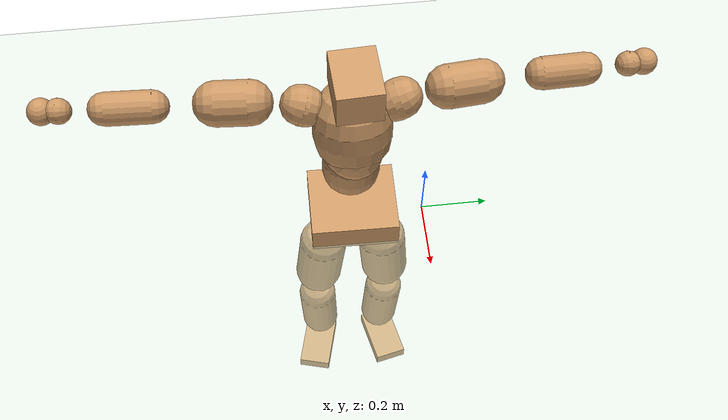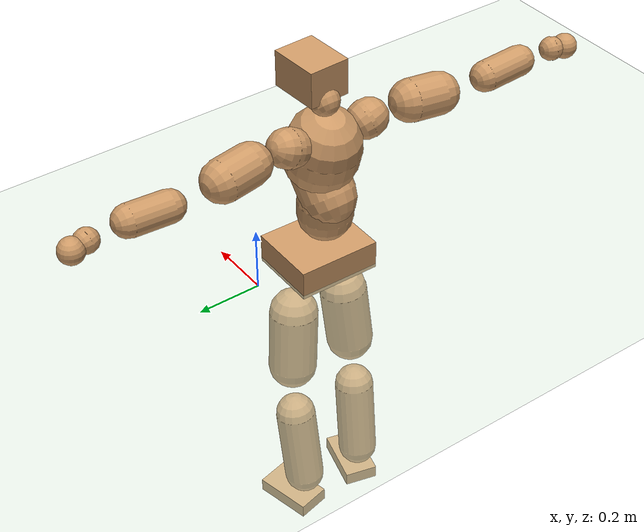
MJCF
<mujoco model="humanoid">
  <compiler coordinate="local" angle="radian"/>
  <default>
    <joint damping="0.0" armature="0.01" stiffness="0.0" limited="true"/>
    <geom conaffinity="1" condim="3" contype="7" margin="0.001" rgba="0.8 0.6 .4 1"/>
  </default>
  <asset>
    <texture type="skybox" builtin="gradient" rgb1=".4 .5 .6" rgb2="0 0 0" width="100" height="100"/>
    <texture builtin="flat" height="1278" mark="cross" markrgb="1 1 1" name="texgeom" random="0.01" rgb1="0.8 0.6 0.4" rgb2="0.8 0.6 0.4" type="cube" width="127"/>
    <texture builtin="checker" height="100" name="texplane" rgb1="0 0 0" rgb2="0.8 0.8 0.8" type="2d" width="100"/>
    <material name="MatPlane" reflectance="0.5" shininess="1" specular="1" texrepeat="60 60" texture="texplane"/>
    <material name="geom" texture="texgeom" texuniform="true"/>
  </asset>
  <worldbody>
    <light cutoff="100" diffuse="1 1 1" dir="-0 0 -1.3" directional="true" exponent="1" pos="0 0 1.3" specular=".1 .1 .1"/>
    <geom conaffinity="1" condim="3" name="floor" pos="0 0 0" rgba="0.8 0.9 0.8 1" size="100 100 .2" type="plane" material="MatPlane"/>
    <body name="Pelvis" pos="0.0017 -0.2139 0.0462">
      <freejoint name="Pelvis"/>
      <geom type="box" contype="1" conaffinity="1" density="5359.373988" pos="-0.0058 0.0001 -0.0140" size="0.1119 0.1302 0.0464" quat="1.0000 0.0000 0.0000 -0.0068" name="Pelvis"/>
      <body name="L_Hip" pos="-0.0004 0.0863 -0.1001">
        <joint name="L_Hip_x" type="hinge" pos="0 0 0" axis="1 0 0" stiffness="1600" damping="160" armature="0.02" range="-180.0000 180.0000"/>
        <joint name="L_Hip_y" type="hinge" pos="0 0 0" axis="0 1 0" stiffness="1600" damping="160" armature="0.02" range="-180.0000 180.0000"/>
        <joint name="L_Hip_z" type="hinge" pos="0 0 0" axis="0 0 1" stiffness="1600" damping="160" armature="0.02" range="-180.0000 180.0000"/>
        <geom type="capsule" contype="1" conaffinity="1" density="2040.816327" size="0.0752" fromto="-0.0047 0.0079 -0.1048 -0.0136 0.0230 -0.3060" name="L_Hip"/>
        <body name="L_Knee" pos="-0.0182 0.0309 -0.4109">
          <joint name="L_Knee_x" type="hinge" pos="0 0 0" axis="1 0 0" stiffness="1600" damping="160" armature="0.02" range="-180.0000 180.0000"/>
          <joint name="L_Knee_y" type="hinge" pos="0 0 0" axis="0 1 0" stiffness="1600" damping="160" armature="0.02" range="-180.0000 180.0000"/>
          <joint name="L_Knee_z" type="hinge" pos="0 0 0" axis="0 0 1" stiffness="1600" damping="160" armature="0.02" range="-180.0000 180.0000"/>
          <geom type="capsule" contype="1" conaffinity="1" density="1234.567901" size="0.0628" fromto="-0.0115 -0.0024 -0.0921 -0.0434 -0.0092 -0.3489" name="L_Knee"/>
          <body name="L_Ankle" pos="-0.0549 -0.0116 -0.441">
            <joint name="L_Ankle_x" type="hinge" pos="0 0 0" axis="1 0 0" stiffness="1600" damping="160" armature="0.02" range="-180.0000 180.0000"/>
            <joint name="L_Ankle_y" type="hinge" pos="0 0 0" axis="0 1 0" stiffness="1600" damping="160" armature="0.02" range="-180.0000 180.0000"/>
            <joint name="L_Ankle_z" type="hinge" pos="0 0 0" axis="0 0 1" stiffness="1600" damping="160" armature="0.02" range="-180.0000 180.0000"/>
            <geom type="box" contype="1" conaffinity="1" density="999.999993" pos="0.0636 0.0144 -0.0314" size="0.0934 0.053 0.023" quat="0.9938 0.0000 0.0000 0.1114" name="L_Ankle"/>
            <body name="L_Toe" pos="0.1272 0.0289 -0.0627">
              <joint name="L_Toe_x" type="hinge" pos="0 0 0" axis="1 0 0" stiffness="1000" damping="100" armature="0.02" range="-180.0000 180.0000"/>
              <joint name="L_Toe_y" type="hinge" pos="0 0 0" axis="0 1 0" stiffness="1000" damping="100" armature="0.02" range="-180.0000 180.0000"/>
              <joint name="L_Toe_z" type="hinge" pos="0 0 0" axis="0 0 1" stiffness="1000" damping="100" armature="0.02" range="-180.0000 180.0000"/>
              <geom type="box" contype="1" conaffinity="1" density="8701451.227911" pos="0.0000 0.0000 0.0318" size="0.001 0.0026 0.0012" quat="0.9931 0.0000 0.0000 0.1170" name="L_Toe"/>
            </body>
          </body>
        </body>
      </body>
      <body name="R_Hip" pos="0.0026 -0.0832 -0.1002">
        <joint name="R_Hip_x" type="hinge" pos="0 0 0" axis="1 0 0" stiffness="1600" damping="160" armature="0.02" range="-180.0000 180.0000"/>
        <joint name="R_Hip_y" type="hinge" pos="0 0 0" axis="0 1 0" stiffness="1600" damping="160" armature="0.02" range="-180.0000 180.0000"/>
        <joint name="R_Hip_z" type="hinge" pos="0 0 0" axis="0 0 1" stiffness="1600" damping="160" armature="0.02" range="-180.0000 180.0000"/>
        <geom type="capsule" contype="1" conaffinity="1" density="2040.816327" size="0.0744" fromto="-0.0051 -0.0096 -0.1038 -0.0153 -0.0286 -0.3103" name="R_Hip"/>
        <body name="R_Knee" pos="-0.0204 -0.0382 -0.4141">
          <joint name="R_Knee_x" type="hinge" pos="0 0 0" axis="1 0 0" stiffness="1600" damping="160" armature="0.02" range="-180.0000 180.0000"/>
          <joint name="R_Knee_y" type="hinge" pos="0 0 0" axis="0 1 0" stiffness="1600" damping="160" armature="0.02" range="-180.0000 180.0000"/>
          <joint name="R_Knee_z" type="hinge" pos="0 0 0" axis="0 0 1" stiffness="1600" damping="160" armature="0.02" range="-180.0000 180.0000"/>
          <geom type="capsule" contype="1" conaffinity="1" density="1234.567901" size="0.0626" fromto="-0.0114 0.0028 -0.0919 -0.0433 0.0107 -0.3499" name="R_Knee"/>
          <body name="R_Ankle" pos="-0.0546 0.0135 -0.4418">
            <joint name="R_Ankle_x" type="hinge" pos="0 0 0" axis="1 0 0" stiffness="1600" damping="160" armature="0.02" range="-180.0000 180.0000"/>
            <joint name="R_Ankle_y" type="hinge" pos="0 0 0" axis="0 1 0" stiffness="1600" damping="160" armature="0.02" range="-180.0000 180.0000"/>
            <joint name="R_Ankle_z" type="hinge" pos="0 0 0" axis="0 0 1" stiffness="1600" damping="160" armature="0.02" range="-180.0000 180.0000"/>
            <geom type="box" contype="1" conaffinity="1" density="999.999929" pos="0.0659 -0.0171 -0.0266" size="0.0938 0.0535 0.0227" quat="0.9920 0.0000 0.0000 -0.1264" name="R_Ankle"/>
            <body name="R_Toe" pos="0.1317 -0.0341 -0.0532">
              <joint name="R_Toe_x" type="hinge" pos="0 0 0" axis="1 0 0" stiffness="1000" damping="100" armature="0.02" range="-180.0000 180.0000"/>
              <joint name="R_Toe_y" type="hinge" pos="0 0 0" axis="0 1 0" stiffness="1000" damping="100" armature="0.02" range="-180.0000 180.0000"/>
              <joint name="R_Toe_z" type="hinge" pos="0 0 0" axis="0 0 1" stiffness="1000" damping="100" armature="0.02" range="-180.0000 180.0000"/>
              <geom type="box" contype="1" conaffinity="1" density="8127382.440924" pos="0.0000 0.0000 0.0293" size="0.001 0.0026 0.0013" quat="0.9931 0.0000 0.0000 -0.1177" name="R_Toe"/>
            </body>
          </body>
        </body>
      </body>
      <body name="Torso" pos="-0.0371 -0.0026 0.1164">
        <joint name="Torso_x" type="hinge" pos="0 0 0" axis="1 0 0" stiffness="2000" damping="200" armature="0.02" range="-180.0000 180.0000"/>
        <joint name="Torso_y" type="hinge" pos="0 0 0" axis="0 1 0" stiffness="2000" damping="200" armature="0.02" range="-180.0000 180.0000"/>
        <joint name="Torso_z" type="hinge" pos="0 0 0" axis="0 0 1" stiffness="2000" damping="200" armature="0.02" range="-180.0000 180.0000"/>
        <geom type="capsule" contype="1" conaffinity="1" density="2040.816327" size="0.0847" fromto="-0.0057 0.0015 0.0845 -0.0025 0.0006 0.0369" name="Torso"/>
        <body name="Spine" pos="-0.0082 0.0021 0.1214">
          <joint name="Spine_x" type="hinge" pos="0 0 0" axis="1 0 0" stiffness="2000" damping="200" armature="0.02" range="-180.0000 180.0000"/>
          <joint name="Spine_y" type="hinge" pos="0 0 0" axis="0 1 0" stiffness="2000" damping="200" armature="0.02" range="-180.0000 180.0000"/>
          <joint name="Spine_z" type="hinge" pos="0 0 0" axis="0 0 1" stiffness="2000" damping="200" armature="0.02" range="-180.0000 180.0000"/>
          <geom type="capsule" contype="1" conaffinity="1" density="2040.816327" size="0.0839" fromto="0.0503 0.0024 0.0671 -0.0126 -0.0006 -0.0169" name="Spine"/>
          <body name="Chest" pos="0.0376 0.0018 0.0502">
            <joint name="Chest_x" type="hinge" pos="0 0 0" axis="1 0 0" stiffness="2000" damping="200" armature="0.02" range="-180.0000 180.0000"/>
            <joint name="Chest_y" type="hinge" pos="0 0 0" axis="0 1 0" stiffness="2000" damping="200" armature="0.02" range="-180.0000 180.0000"/>
            <joint name="Chest_z" type="hinge" pos="0 0 0" axis="0 0 1" stiffness="2000" damping="200" armature="0.02" range="-180.0000 180.0000"/>
            <geom type="capsule" contype="1" conaffinity="1" density="2040.816327" size="0.1121" fromto="-0.0342 0.0001 0.1068 -0.0181 0.0000 0.0567" name="Chest"/>
            <body name="Neck" pos="-0.0604 0.001 0.228">
              <joint name="Neck_x" type="hinge" pos="0 0 0" axis="1 0 0" stiffness="1000" damping="100" armature="0.02" range="-180.0000 180.0000"/>
              <joint name="Neck_y" type="hinge" pos="0 0 0" axis="0 1 0" stiffness="1000" damping="100" armature="0.02" range="-180.0000 180.0000"/>
              <joint name="Neck_z" type="hinge" pos="0 0 0" axis="0 0 1" stiffness="1000" damping="100" armature="0.02" range="-180.0000 180.0000"/>
              <geom type="capsule" contype="1" conaffinity="1" density="1000" size="0.0449" fromto="0.0304 0.0004 0.0330 0.0206 0.0003 0.0224" name="Neck"/>
              <body name="Head" pos="0.0511 0.0007 0.0553">
                <joint name="Head_x" type="hinge" pos="0 0 0" axis="1 0 0" stiffness="1000" damping="100" armature="0.02" range="-180.0000 180.0000"/>
                <joint name="Head_y" type="hinge" pos="0 0 0" axis="0 1 0" stiffness="1000" damping="100" armature="0.02" range="-180.0000 180.0000"/>
                <joint name="Head_z" type="hinge" pos="0 0 0" axis="0 0 1" stiffness="1000" damping="100" armature="0.02" range="-180.0000 180.0000"/>
                <geom type="box" contype="1" conaffinity="1" density="2250.000046" pos="0.0265 0.0014 0.0287" size="0.0793 0.0632 0.0549" quat="0.9997 0.0000 0.0000 0.0255" name="Head"/>
              </body>
            </body>
            <body name="L_Thorax" pos="-0.0453 0.0841 0.132">
              <joint name="L_Thorax_x" type="hinge" pos="0 0 0" axis="1 0 0" stiffness="1000" damping="100" armature="0.02" range="-180.0000 180.0000"/>
              <joint name="L_Thorax_y" type="hinge" pos="0 0 0" axis="0 1 0" stiffness="1000" damping="100" armature="0.02" range="-180.0000 180.0000"/>
              <joint name="L_Thorax_z" type="hinge" pos="0 0 0" axis="0 0 1" stiffness="1000" damping="100" armature="0.02" range="-180.0000 180.0000"/>
              <geom type="capsule" contype="1" conaffinity="1" density="1000" size="0.0583" fromto="-0.0065 0.0534 0.0226 -0.0044 0.0362 0.0154" name="L_Thorax"/>
              <body name="L_Shoulder" pos="-0.0108 0.0896 0.038">
                <joint name="L_Shoulder_x" type="hinge" pos="0 0 0" axis="1 0 0" stiffness="1000" damping="100" armature="0.02" range="-720.0000 720.0000"/>
                <joint name="L_Shoulder_y" type="hinge" pos="0 0 0" axis="0 1 0" stiffness="1000" damping="100" armature="0.02" range="-720.0000 720.0000"/>
                <joint name="L_Shoulder_z" type="hinge" pos="0 0 0" axis="0 0 1" stiffness="1000" damping="100" armature="0.02" range="-720.0000 720.0000"/>
                <geom type="capsule" contype="1" conaffinity="1" density="1000" size="0.0626" fromto="-0.0119 0.0917 -0.0052 -0.0244 0.1886 -0.0107" name="L_Shoulder"/>
                <body name="L_Elbow" pos="-0.0363 0.2804 -0.0159">
                  <joint name="L_Elbow_x" type="hinge" pos="0 0 0" axis="1 0 0" stiffness="1000" damping="100" armature="0.02" range="-720.0000 720.0000"/>
                  <joint name="L_Elbow_y" type="hinge" pos="0 0 0" axis="0 1 0" stiffness="1000" damping="100" armature="0.02" range="-720.0000 720.0000"/>
                  <joint name="L_Elbow_z" type="hinge" pos="0 0 0" axis="0 0 1" stiffness="1000" damping="100" armature="0.02" range="-720.0000 720.0000"/>
                  <geom type="capsule" contype="1" conaffinity="1" density="1000" size="0.0465" fromto="0.0009 0.0764 0.0038 0.0023 0.1964 0.0099" name="L_Elbow"/>
                  <body name="L_Wrist" pos="0.0032 0.2728 0.0137">
                    <joint name="L_Wrist_x" type="hinge" pos="0 0 0" axis="1 0 0" stiffness="600" damping="60" armature="0.02" range="-180.0000 180.0000"/>
                    <joint name="L_Wrist_y" type="hinge" pos="0 0 0" axis="0 1 0" stiffness="600" damping="60" armature="0.02" range="-180.0000 180.0000"/>
                    <joint name="L_Wrist_z" type="hinge" pos="0 0 0" axis="0 0 1" stiffness="600" damping="60" armature="0.02" range="-180.0000 180.0000"/>
                    <geom type="capsule" contype="1" conaffinity="1" density="1000" size="0.0352" fromto="-0.0076 0.0456 -0.0055 -0.0079 0.0475 -0.0057" name="L_Wrist"/>
                    <body name="L_Hand" pos="-0.0155 0.0931 -0.0112">
                      <joint name="L_Hand_x" type="hinge" pos="0 0 0" axis="1 0 0" stiffness="600" damping="60" armature="0.02" range="-180.0000 180.0000"/>
                      <joint name="L_Hand_y" type="hinge" pos="0 0 0" axis="0 1 0" stiffness="600" damping="60" armature="0.02" range="-180.0000 180.0000"/>
                      <joint name="L_Hand_z" type="hinge" pos="0 0 0" axis="0 0 1" stiffness="600" damping="60" armature="0.02" range="-180.0000 180.0000"/>
                      <geom type="sphere" contype="1" conaffinity="1" density="1000" size="0.0375" pos="0.0000 0.0000 0.0000" name="L_Hand"/>
                    </body>
                  </body>
                </body>
              </body>
            </body>
            <body name="R_Thorax" pos="-0.0512 -0.0847 0.1304">
              <joint name="R_Thorax_x" type="hinge" pos="0 0 0" axis="1 0 0" stiffness="1000" damping="100" armature="0.02" range="-180.0000 180.0000"/>
              <joint name="R_Thorax_y" type="hinge" pos="0 0 0" axis="0 1 0" stiffness="1000" damping="100" armature="0.02" range="-180.0000 180.0000"/>
              <joint name="R_Thorax_z" type="hinge" pos="0 0 0" axis="0 0 1" stiffness="1000" damping="100" armature="0.02" range="-180.0000 180.0000"/>
              <geom type="capsule" contype="1" conaffinity="1" density="1000" size="0.0579" fromto="-0.0059 -0.0536 0.0212 -0.0046 -0.0420 0.0166" name="R_Thorax"/>
              <body name="R_Shoulder" pos="-0.0105 -0.0955 0.0378">
                <joint name="R_Shoulder_x" type="hinge" pos="0 0 0" axis="1 0 0" stiffness="1000" damping="100" armature="0.02" range="-720.0000 720.0000"/>
                <joint name="R_Shoulder_y" type="hinge" pos="0 0 0" axis="0 1 0" stiffness="1000" damping="100" armature="0.02" range="-720.0000 720.0000"/>
                <joint name="R_Shoulder_z" type="hinge" pos="0 0 0" axis="0 0 1" stiffness="1000" damping="100" armature="0.02" range="-720.0000 720.0000"/>
                <geom type="capsule" contype="1" conaffinity="1" density="1000" size="0.0641" fromto="-0.0098 -0.0935 -0.0058 -0.0195 -0.1865 -0.0115" name="R_Shoulder"/>
                <body name="R_Elbow" pos="-0.0292 -0.28 -0.0173">
                  <joint name="R_Elbow_x" type="hinge" pos="0 0 0" axis="1 0 0" stiffness="1000" damping="100" armature="0.02" range="-720.0000 720.0000"/>
                  <joint name="R_Elbow_y" type="hinge" pos="0 0 0" axis="0 1 0" stiffness="1000" damping="100" armature="0.02" range="-720.0000 720.0000"/>
                  <joint name="R_Elbow_z" type="hinge" pos="0 0 0" axis="0 0 1" stiffness="1000" damping="100" armature="0.02" range="-720.0000 720.0000"/>
                  <geom type="capsule" contype="1" conaffinity="1" density="1000" size="0.0468" fromto="0.0003 -0.0767 0.0041 0.0007 -0.2050 0.0111" name="R_Elbow"/>
                  <body name="R_Wrist" pos="0.0009 -0.2817 0.0152">
                    <joint name="R_Wrist_x" type="hinge" pos="0 0 0" axis="1 0 0" stiffness="600" damping="60" armature="0.02" range="-180.0000 180.0000"/>
                    <joint name="R_Wrist_y" type="hinge" pos="0 0 0" axis="0 1 0" stiffness="600" damping="60" armature="0.02" range="-180.0000 180.0000"/>
                    <joint name="R_Wrist_z" type="hinge" pos="0 0 0" axis="0 0 1" stiffness="600" damping="60" armature="0.02" range="-180.0000 180.0000"/>
                    <geom type="capsule" contype="1" conaffinity="1" density="1000" size="0.0363" fromto="-0.0063 -0.0464 -0.0042 -0.0065 -0.0484 -0.0043" name="R_Wrist"/>
                    <body name="R_Hand" pos="-0.0128 -0.0948 -0.0085">
                      <joint name="R_Hand_x" type="hinge" pos="0 0 0" axis="1 0 0" stiffness="600" damping="60" armature="0.02" range="-180.0000 180.0000"/>
                      <joint name="R_Hand_y" type="hinge" pos="0 0 0" axis="0 1 0" stiffness="600" damping="60" armature="0.02" range="-180.0000 180.0000"/>
                      <joint name="R_Hand_z" type="hinge" pos="0 0 0" axis="0 0 1" stiffness="600" damping="60" armature="0.02" range="-180.0000 180.0000"/>
                      <geom type="sphere" contype="1" conaffinity="1" density="1000" size="0.0381" pos="0.0000 0.0000 0.0000" name="R_Hand"/>
                    </body>
                  </body>
                </body>
              </body>
            </body>
          </body>
        </body>
      </body>
    </body>
  </worldbody>
  <actuator>
    <motor name="L_Hip_x" joint="L_Hip_x" gear="500"/>
    <motor name="L_Hip_y" joint="L_Hip_y" gear="500"/>
    <motor name="L_Hip_z" joint="L_Hip_z" gear="500"/>
    <motor name="L_Knee_x" joint="L_Knee_x" gear="500"/>
    <motor name="L_Knee_y" joint="L_Knee_y" gear="500"/>
    <motor name="L_Knee_z" joint="L_Knee_z" gear="500"/>
    <motor name="L_Ankle_x" joint="L_Ankle_x" gear="500"/>
    <motor name="L_Ankle_y" joint="L_Ankle_y" gear="500"/>
    <motor name="L_Ankle_z" joint="L_Ankle_z" gear="500"/>
    <motor name="L_Toe_x" joint="L_Toe_x" gear="500"/>
    <motor name="L_Toe_y" joint="L_Toe_y" gear="500"/>
    <motor name="L_Toe_z" joint="L_Toe_z" gear="500"/>
    <motor name="R_Hip_x" joint="R_Hip_x" gear="500"/>
    <motor name="R_Hip_y" joint="R_Hip_y" gear="500"/>
    <motor name="R_Hip_z" joint="R_Hip_z" gear="500"/>
    <motor name="R_Knee_x" joint="R_Knee_x" gear="500"/>
    <motor name="R_Knee_y" joint="R_Knee_y" gear="500"/>
    <motor name="R_Knee_z" joint="R_Knee_z" gear="500"/>
    <motor name="R_Ankle_x" joint="R_Ankle_x" gear="500"/>
    <motor name="R_Ankle_y" joint="R_Ankle_y" gear="500"/>
    <motor name="R_Ankle_z" joint="R_Ankle_z" gear="500"/>
    <motor name="R_Toe_x" joint="R_Toe_x" gear="500"/>
    <motor name="R_Toe_y" joint="R_Toe_y" gear="500"/>
    <motor name="R_Toe_z" joint="R_Toe_z" gear="500"/>
    <motor name="Torso_x" joint="Torso_x" gear="500"/>
    <motor name="Torso_y" joint="Torso_y" gear="500"/>
    <motor name="Torso_z" joint="Torso_z" gear="500"/>
    <motor name="Spine_x" joint="Spine_x" gear="500"/>
    <motor name="Spine_y" joint="Spine_y" gear="500"/>
    <motor name="Spine_z" joint="Spine_z" gear="500"/>
    <motor name="Chest_x" joint="Chest_x" gear="500"/>
    <motor name="Chest_y" joint="Chest_y" gear="500"/>
    <motor name="Chest_z" joint="Chest_z" gear="500"/>
    <motor name="Neck_x" joint="Neck_x" gear="500"/>
    <motor name="Neck_y" joint="Neck_y" gear="500"/>
    <motor name="Neck_z" joint="Neck_z" gear="500"/>
    <motor name="Head_x" joint="Head_x" gear="500"/>
    <motor name="Head_y" joint="Head_y" gear="500"/>
    <motor name="Head_z" joint="Head_z" gear="500"/>
    <motor name="L_Thorax_x" joint="L_Thorax_x" gear="500"/>
    <motor name="L_Thorax_y" joint="L_Thorax_y" gear="500"/>
    <motor name="L_Thorax_z" joint="L_Thorax_z" gear="500"/>
    <motor name="L_Shoulder_x" joint="L_Shoulder_x" gear="500"/>
    <motor name="L_Shoulder_y" joint="L_Shoulder_y" gear="500"/>
    <motor name="L_Shoulder_z" joint="L_Shoulder_z" gear="500"/>
    <motor name="L_Elbow_x" joint="L_Elbow_x" gear="500"/>
    <motor name="L_Elbow_y" joint="L_Elbow_y" gear="500"/>
    <motor name="L_Elbow_z" joint="L_Elbow_z" gear="500"/>
    <motor name="L_Wrist_x" joint="L_Wrist_x" gear="500"/>
    <motor name="L_Wrist_y" joint="L_Wrist_y" gear="500"/>
    <motor name="L_Wrist_z" joint="L_Wrist_z" gear="500"/>
    <motor name="L_Hand_x" joint="L_Hand_x" gear="500"/>
    <motor name="L_Hand_y" joint="L_Hand_y" gear="500"/>
    <motor name="L_Hand_z" joint="L_Hand_z" gear="500"/>
    <motor name="R_Thorax_x" joint="R_Thorax_x" gear="500"/>
    <motor name="R_Thorax_y" joint="R_Thorax_y" gear="500"/>
    <motor name="R_Thorax_z" joint="R_Thorax_z" gear="500"/>
    <motor name="R_Shoulder_x" joint="R_Shoulder_x" gear="500"/>
    <motor name="R_Shoulder_y" joint="R_Shoulder_y" gear="500"/>
    <motor name="R_Shoulder_z" joint="R_Shoulder_z" gear="500"/>
    <motor name="R_Elbow_x" joint="R_Elbow_x" gear="500"/>
    <motor name="R_Elbow_y" joint="R_Elbow_y" gear="500"/>
    <motor name="R_Elbow_z" joint="R_Elbow_z" gear="500"/>
    <motor name="R_Wrist_x" joint="R_Wrist_x" gear="500"/>
    <motor name="R_Wrist_y" joint="R_Wrist_y" gear="500"/>
    <motor name="R_Wrist_z" joint="R_Wrist_z" gear="500"/>
    <motor name="R_Hand_x" joint="R_Hand_x" gear="500"/>
    <motor name="R_Hand_y" joint="R_Hand_y" gear="500"/>
    <motor name="R_Hand_z" joint="R_Hand_z" gear="500"/>
  </actuator>
  <contact>
    <exclude body1="Torso" body2="Chest"/>
    <exclude body1="Head" body2="Chest"/>
    <exclude body1="R_Knee" body2="R_Toe"/>
    <exclude body1="R_Knee" body2="L_Ankle"/>
    <exclude body1="R_Knee" body2="L_Toe"/>
    <exclude body1="L_Knee" body2="L_Toe"/>
    <exclude body1="L_Knee" body2="R_Ankle"/>
    <exclude body1="L_Knee" body2="R_Toe"/>
    <exclude body1="L_Shoulder" body2="Chest"/>
    <exclude body1="R_Shoulder" body2="Chest"/>
  </contact>
  <sensor/>
  <size njmax="700" nconmax="700"/>
</mujoco>
